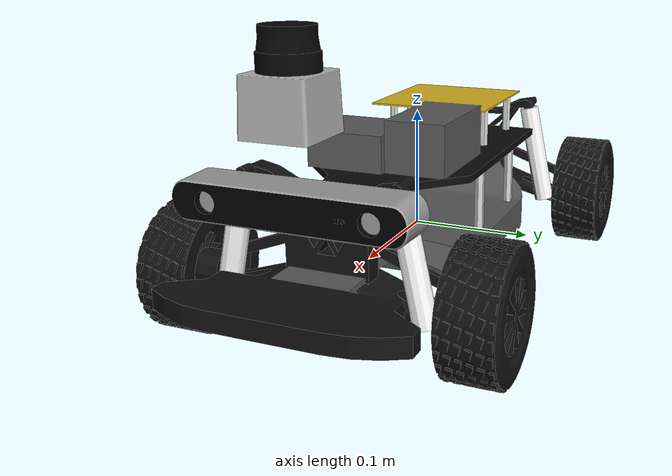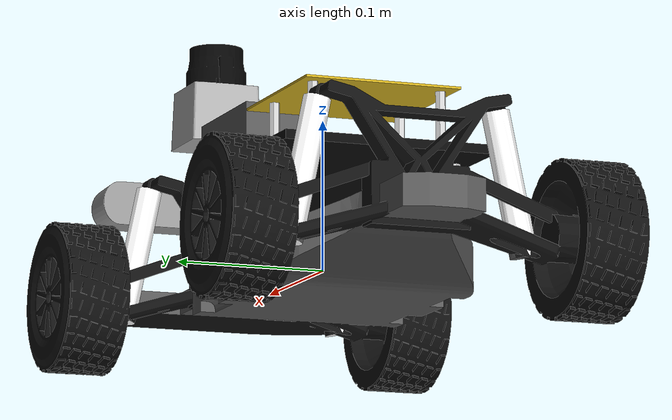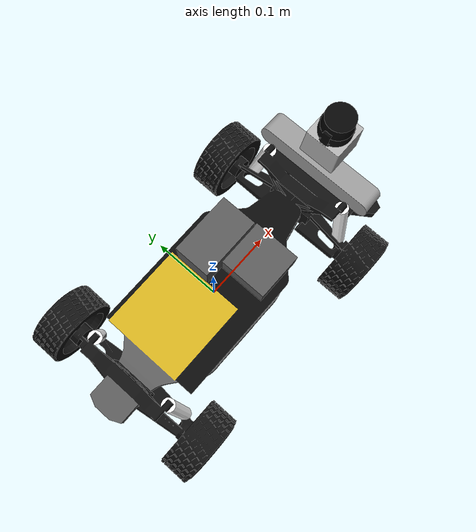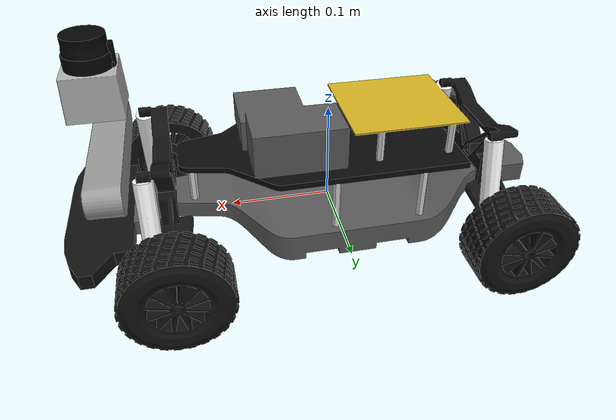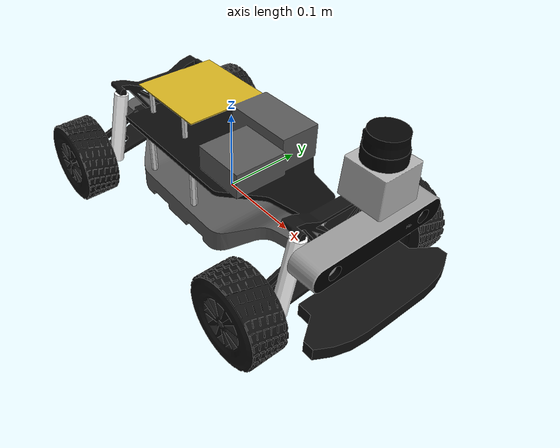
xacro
<?xml version='1.0'?>

<robot name="myrobot" xmlns:xacro="http://www.ros.org/wiki/xacro">

  <xacro:include filename="$(find racer_model)/racer_description/racer_plugins.gazebo" />
  <xacro:include filename="$(find racer_model)/racer_description/racer_macros.xacro" />

  <xacro:property name="cameraMass" value="0.1"/>

  <xacro:property name="hokuyoSize" value="0.1"/>
  <xacro:property name="hokuyoMass" value="0.1"/>

  <xacro:property name="bodySizeL" value="0.49"/>
  <xacro:property name="bodySizeB" value="0.18"/>
  <xacro:property name="bodySizeH" value="0.1"/>
  <xacro:property name="bodyMass" value="3.5"/>

  <!--  Body  -->
  <link name='chassis'>
    <inertial>
      <mass value="${bodyMass}"/>
      <origin xyz="0 0 ${wheel_height/2}" rpy=" 0 0 0"/>
      <box_inertia  m="${bodyMass}" l="${bodySizeL}" b="${bodySizeB}" h="${bodySizeH}" />
    </inertial>

    <collision name='collision'>
      <origin xyz="0 0 ${wheel_height/2}" rpy=" 0 0 0"/>
      <geometry>
        <box size="${bodySizeL} ${bodySizeB} ${bodySizeH}"/>
      </geometry>
    </collision>

    <visual>
      <origin xyz="0 0 0" rpy="0 0 0"/>
      <geometry>
        <mesh filename="package://racer_model/racer_description/meshes/car.dae"/>
      </geometry>
    </visual>
  </link>

  <!--  Wheels  -->
  <wheel  fb="front" lr="left" parent="chassis" translateX="1" translateY="1" left="1" OffsetY="0.02" />
  <wheel  fb="back" lr="left" parent="chassis" translateX="-1" translateY="1" left="1" OffsetY="0.02" />
  <wheel  fb="front" lr="right" parent="chassis" translateX="1" translateY="-1" left="0" OffsetY="-0.02" />
  <wheel  fb="back" lr="right" parent="chassis" translateX="-1" translateY="-1" left="0" OffsetY="-0.02" />

  <!-- Camera -->
  <link name="camera">
    <inertial>
      <mass value="${cameraMass}" />
      <origin xyz="0 0 ${wheel_height/2}" rpy="0 0 0"/>
      <box_inertia m="${cameraMass}" l="0.03" b="0.03" h="0.17" />
    </inertial>

    <collision>
      <origin xyz="0 0 ${wheel_height/2}" rpy="0 0 0"/>
      <geometry>
        <box size="0.03 0.17 0.03"/>
      </geometry>
    </collision>

    <visual>
      <origin xyz="0 0 0" rpy="0 0 0"/>
      <geometry>
        <mesh filename="package://racer_model/racer_description/meshes/ZED.dae"/>
      </geometry>
    </visual>
  </link>
  <joint name="camera_joint" type="fixed">
    <axis xyz="0 1 0" />
    <origin xyz=".21 0 0.075" rpy="0 0 0"/>
    <parent link="chassis"/>
    <child link="camera"/>
  </joint>

  <!-- Hokuyo Laser -->
  <link name="hokuyo">
    <inertial>
      <mass value="${hokuyoMass}" />
      <origin xyz="0 0 ${wheel_height/2}" rpy="0 0 0"/>
      <box_inertia  m="${hokuyoMass}" l="${hokuyoSize}" b="${hokuyoSize}" h="${hokuyoSize}" />
    </inertial>

    <collision>
      <origin xyz="0 0 ${wheel_height/2}" rpy="0 0 0"/>
      <geometry>
    	  <box size="${hokuyoSize} ${hokuyoSize} ${hokuyoSize}"/>
      </geometry>
    </collision>

    <visual>
      <origin xyz="0 0 ${wheel_height/2}" rpy="0 0 0"/>
      <geometry>
        <mesh filename="package://racer_model/racer_description/meshes/hokuyo.dae"/>
      </geometry>
    </visual>
  </link>

  <joint name="hokuyo_joint" type="fixed">
    <axis xyz="0 1 0" />
    <origin xyz=".21 0 .135" rpy="0 0 0"/>
    <parent link="chassis"/>
    <child link="hokuyo"/>
  </joint>

</robot>

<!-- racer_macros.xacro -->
<robot name="racer_macros" xmlns:xacro="http://www.ros.org/wiki/xacro">

  <!-- Inertias -->
  <macro name="cylinder_inertia" params="m r h">
    <inertia  ixx="${m*(3*r*r+h*h)/12}" ixy = "0" ixz = "0"
              iyy="${m*(3*r*r+h*h)/12}" iyz = "0"
              izz="${m*r*r/2}" />
  </macro>

  <macro name="box_inertia" params="m l b h">
    <inertia  ixx="${m*(b*b+h*h)/12}" ixy = "0" ixz = "0"
              iyy="${m*(l*l+h*h)/12}" iyz = "0"
              izz="${m*(l*l+b*b)/12}" />
  </macro>

  <!-- Wheels -->
  <property name="wheel_radius" value="0.05" />
  <property name="wheel_height" value="0.045" />
  <property name="wheel_mass" value="0.2" />

  <property name="base_x_origin_to_wheel_origin" value="0.16" />
  <property name="base_y_origin_to_wheel_origin" value="0.095" />
  <property name="base_z_origin_to_wheel_origin" value="0" />

  <xacro:macro name="wheel" params="fb lr parent translateX translateY left OffsetY">
    <link name="${lr}_wheel_${fb}">
      <inertial>
        <mass value="${wheel_mass}" />
        <origin xyz="0 ${OffsetY} 0" rpy="${90*pi/180} 0 0"/>
        <cylinder_inertia  m="${wheel_mass}" r="${wheel_radius}" h="${wheel_height}" />
      </inertial>

      <collision>
        <origin xyz="0 ${OffsetY} 0" rpy="${90*pi/180} 0 0 " />
        <geometry>
          <cylinder length="${wheel_height}" radius="${wheel_radius}" />
        </geometry>
      </collision>

      <visual name="visual">
          <origin xyz="0 ${OffsetY} 0" rpy="0 0 ${left*pi}" />
          <geometry>
            <mesh filename="package://racer_model/racer_description/meshes/wheel.dae"/>
          </geometry>
      </visual>
    </link>

    <joint name="${lr}_wheel_${fb}_hinge" type="continuous">
      <parent link="${parent}"/>
      <child link="${lr}_wheel_${fb}"/>
      <origin xyz="${translateX * base_x_origin_to_wheel_origin} ${translateY * base_y_origin_to_wheel_origin} ${base_z_origin_to_wheel_origin}" rpy="0 0 0" />
      <axis xyz="0 1 0" rpy="0 0 0" />
      <limit effort="100" velocity="100"/>
      <joint_properties damping="0.0" friction="0.0"/>
    </joint>

  </xacro:macro>
</robot>
